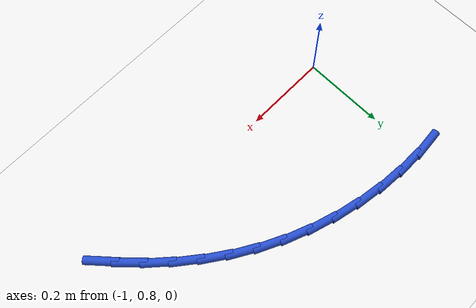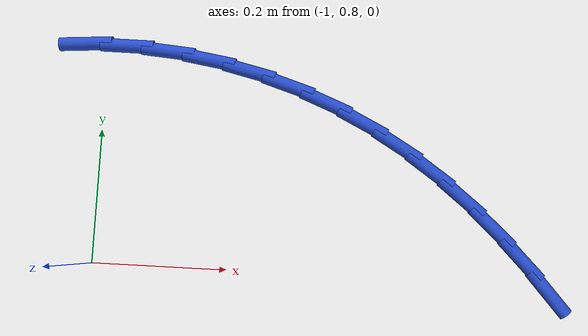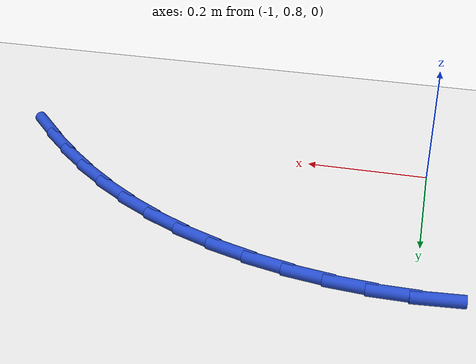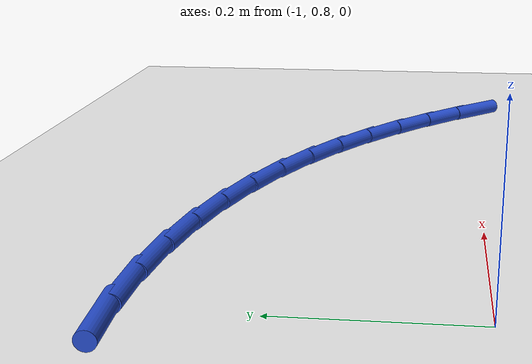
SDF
<sdf version="1.6">
 <world name="default">
  <model name="ground_plane">
   <static>1</static>
   <link name="link">
    <collision name="collision">
     <geometry><plane><normal>0 0 1</normal><size>100 100</size></plane></geometry>
     <surface><friction><ode><mu>100</mu><mu2>50</mu2></ode></friction></surface>
    </collision>
    <visual name="visual">
     <cast_shadows>0</cast_shadows>
     <geometry><plane><normal>0 0 1</normal><size>100 100</size></plane></geometry>
     <material>
      <script><uri>file://media/materials/scripts/gazebo.material</uri><name>Gazebo/WhiteGlow</name></script>
     </material>
    </visual>
   </link>
  </model>
  <model name="line">
   <link name="link_14">
    <pose>-0.326613634713071 0.7918095472792765 0.01 0 1.57 -0.8494689752485453</pose>
    <collision name="collision">
     <geometry><cylinder><radius>0.01</radius><length>0.08</length></cylinder></geometry>
    </collision>
    <visual name="visual">
     <material>
      <script><name>Gazebo/Blue</name><uri>file://media/materials/scripts/gazebo.material</uri></script>
     </material>
     <geometry><cylinder><radius>0.01</radius><length>0.08</length></cylinder></geometry>
    </visual>
   </link>
   <link name="link_15">
    <pose>-0.3678555028021521 0.8387062661601524 0.01 0 1.57 -0.7951306503877832</pose>
    <collision name="collision">
     <geometry><cylinder><radius>0.01</radius><length>0.08</length></cylinder></geometry>
    </collision>
    <visual name="visual">
     <material>
      <script><name>Gazebo/Blue</name><uri>file://media/materials/scripts/gazebo.material</uri></script>
     </material>
     <geometry><cylinder><radius>0.01</radius><length>0.08</length></cylinder></geometry>
    </visual>
   </link>
   <link name="link_16">
    <pose>-0.41137631245093553 0.8830825602384853 0.01 0 1.57 -0.7364151893532725</pose>
    <collision name="collision">
     <geometry><cylinder><radius>0.01</radius><length>0.08</length></cylinder></geometry>
    </collision>
    <visual name="visual">
     <material>
      <script><name>Gazebo/Blue</name><uri>file://media/materials/scripts/gazebo.material</uri></script>
     </material>
     <geometry><cylinder><radius>0.01</radius><length>0.08</length></cylinder></geometry>
    </visual>
   </link>
   <link name="link_17">
    <pose>-0.45722344326480163 0.9246446975518434 0.01 0 1.57 -0.6731910558375234</pose>
    <collision name="collision">
     <geometry><cylinder><radius>0.01</radius><length>0.08</length></cylinder></geometry>
    </collision>
    <visual name="visual">
     <material>
      <script><name>Gazebo/Blue</name><uri>file://media/materials/scripts/gazebo.material</uri></script>
     </material>
     <geometry><cylinder><radius>0.01</radius><length>0.08</length></cylinder></geometry>
    </visual>
   </link>
   <link name="link_18">
    <pose>-0.505444274849131 0.9630989461377957 0.01 0 1.57 -0.6054491170619963</pose>
    <collision name="collision">
     <geometry><cylinder><radius>0.01</radius><length>0.08</length></cylinder></geometry>
    </collision>
    <visual name="visual">
     <material>
      <script><name>Gazebo/Blue</name><uri>file://media/materials/scripts/gazebo.material</uri></script>
     </material>
     <geometry><cylinder><radius>0.01</radius><length>0.08</length></cylinder></geometry>
    </visual>
   </link>
   <link name="link_19">
    <pose>-0.5560861868093041 0.9981515740339103 0.01 0 1.57 -0.533343500450923</pose>
    <collision name="collision">
     <geometry><cylinder><radius>0.01</radius><length>0.08</length></cylinder></geometry>
    </collision>
    <visual name="visual">
     <material>
      <script><name>Gazebo/Blue</name><uri>file://media/materials/scripts/gazebo.material</uri></script>
     </material>
     <geometry><cylinder><radius>0.01</radius><length>0.08</length></cylinder></geometry>
    </visual>
   </link>
   <link name="link_20">
    <pose>-0.6091965587507014 1.0295088492777562 0.01 0 1.57 -0.4572307032088543</pose>
    <collision name="collision">
     <geometry><cylinder><radius>0.01</radius><length>0.08</length></cylinder></geometry>
    </collision>
    <visual name="visual">
     <material>
      <script><name>Gazebo/Blue</name><uri>file://media/materials/scripts/gazebo.material</uri></script>
     </material>
     <geometry><cylinder><radius>0.01</radius><length>0.08</length></cylinder></geometry>
    </visual>
   </link>
   <link name="link_21">
    <pose>-0.6648225856042276 1.0568770998830717 0.01 0 1.57 -0.3792032389224037</pose>
    <collision name="collision">
     <geometry><cylinder><radius>0.01</radius><length>0.08</length></cylinder></geometry>
    </collision>
    <visual name="visual">
     <material>
      <script><name>Gazebo/Blue</name><uri>file://media/materials/scripts/gazebo.material</uri></script>
     </material>
     <geometry><cylinder><radius>0.01</radius><length>0.08</length></cylinder></geometry>
    </visual>
   </link>
   <link name="link_22">
    <pose>-0.72287032028883 1.0800084921271123 0.01 0 1.57 -0.30333457164415795</pose>
    <collision name="collision">
     <geometry><cylinder><radius>0.01</radius><length>0.08</length></cylinder></geometry>
    </collision>
    <visual name="visual">
     <material>
      <script><name>Gazebo/Blue</name><uri>file://media/materials/scripts/gazebo.material</uri></script>
     </material>
     <geometry><cylinder><radius>0.01</radius><length>0.08</length></cylinder></geometry>
    </visual>
   </link>
   <link name="link_23">
    <pose>-0.7828531152975958 1.0987827284144316 0.01 0 1.57 -0.22924193585364747</pose>
    <collision name="collision">
     <geometry><cylinder><radius>0.01</radius><length>0.08</length></cylinder></geometry>
    </collision>
    <visual name="visual">
     <material>
      <script><name>Gazebo/Blue</name><uri>file://media/materials/scripts/gazebo.material</uri></script>
     </material>
     <geometry><cylinder><radius>0.01</radius><length>0.08</length></cylinder></geometry>
    </visual>
   </link>
   <link name="link_24">
    <pose>-0.8442165701244583 1.1131015150858043 0.01 0 1.57 -0.15574852997149918</pose>
    <collision name="collision">
     <geometry><cylinder><radius>0.01</radius><length>0.08</length></cylinder></geometry>
    </collision>
    <visual name="visual">
     <material>
      <script><name>Gazebo/Blue</name><uri>file://media/materials/scripts/gazebo.material</uri></script>
     </material>
     <geometry><cylinder><radius>0.01</radius><length>0.08</length></cylinder></geometry>
    </visual>
   </link>
   <link name="link_25">
    <pose>-0.9064062842633516 1.122866558482006 0.01 0 1.57 -0.08167632516907967</pose>
    <collision name="collision">
     <geometry><cylinder><radius>0.01</radius><length>0.08</length></cylinder></geometry>
    </collision>
    <visual name="visual">
     <material>
      <script><name>Gazebo/Blue</name><uri>file://media/materials/scripts/gazebo.material</uri></script>
     </material>
     <geometry><cylinder><radius>0.01</radius><length>0.08</length></cylinder></geometry>
    </visual>
   </link>
   <link name="link_26">
    <pose>-0.9688678572082089 1.12797956494381 0.01 0 1.57 -0.005832701927305465</pose>
    <collision name="collision">
     <geometry><cylinder><radius>0.01</radius><length>0.08</length></cylinder></geometry>
    </collision>
    <visual name="visual">
     <material>
      <script><name>Gazebo/Blue</name><uri>file://media/materials/scripts/gazebo.material</uri></script>
     </material>
     <geometry><cylinder><radius>0.01</radius><length>0.08</length></cylinder></geometry>
    </visual>
   </link>
   <link name="link_27">
    <pose>-1.0310468884529647 1.1283422408119927 0.01 0 1.57 0.0730000733067794</pose>
    <collision name="collision">
     <geometry><cylinder><radius>0.01</radius><length>0.08</length></cylinder></geometry>
    </collision>
    <visual name="visual">
     <material>
      <script><name>Gazebo/Blue</name><uri>file://media/materials/scripts/gazebo.material</uri></script>
     </material>
     <geometry><cylinder><radius>0.01</radius><length>0.08</length></cylinder></geometry>
    </visual>
   </link>
  </model>
 </world>
</sdf>
